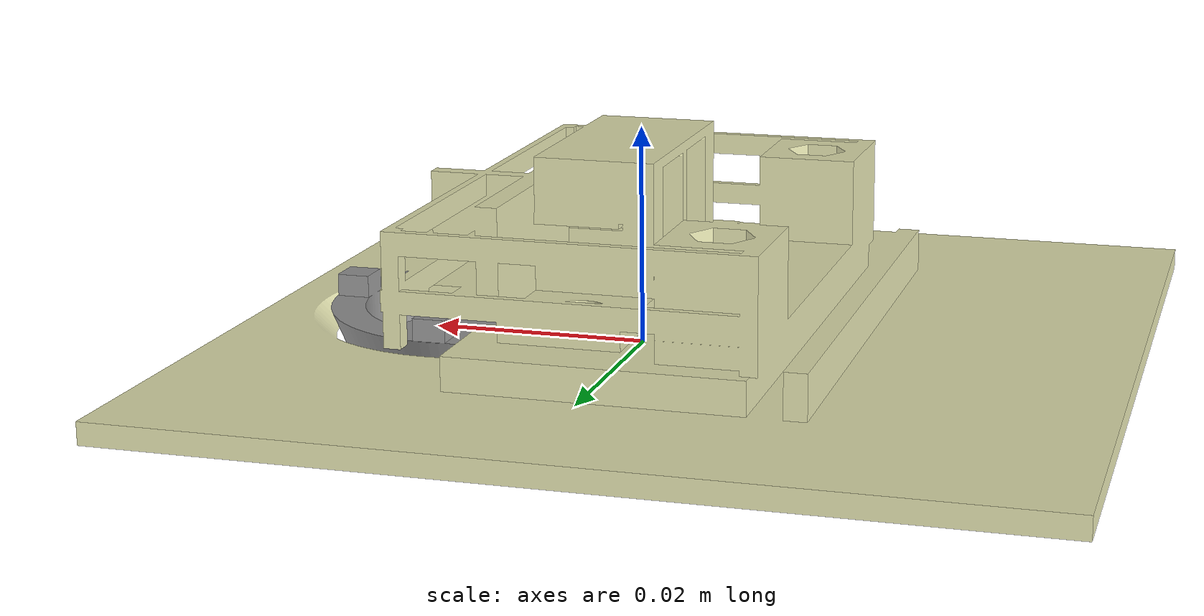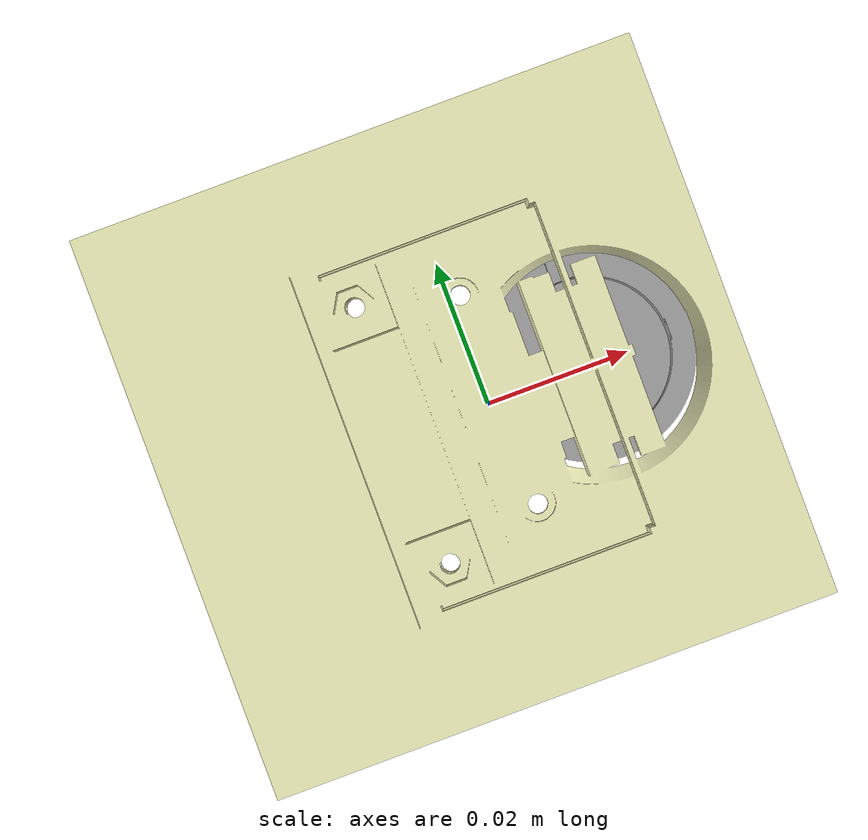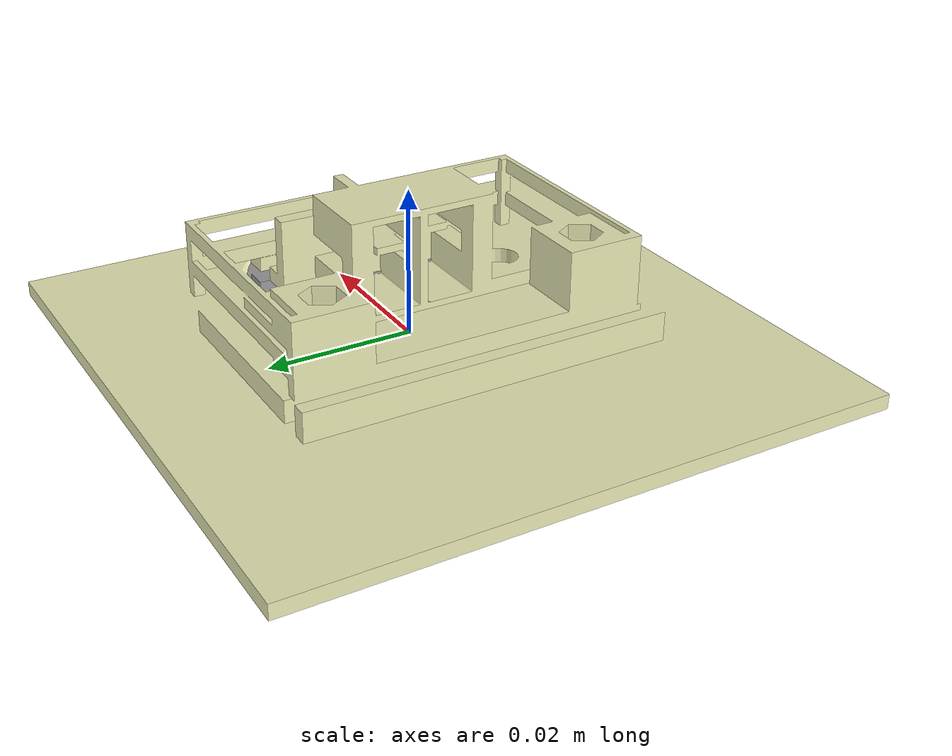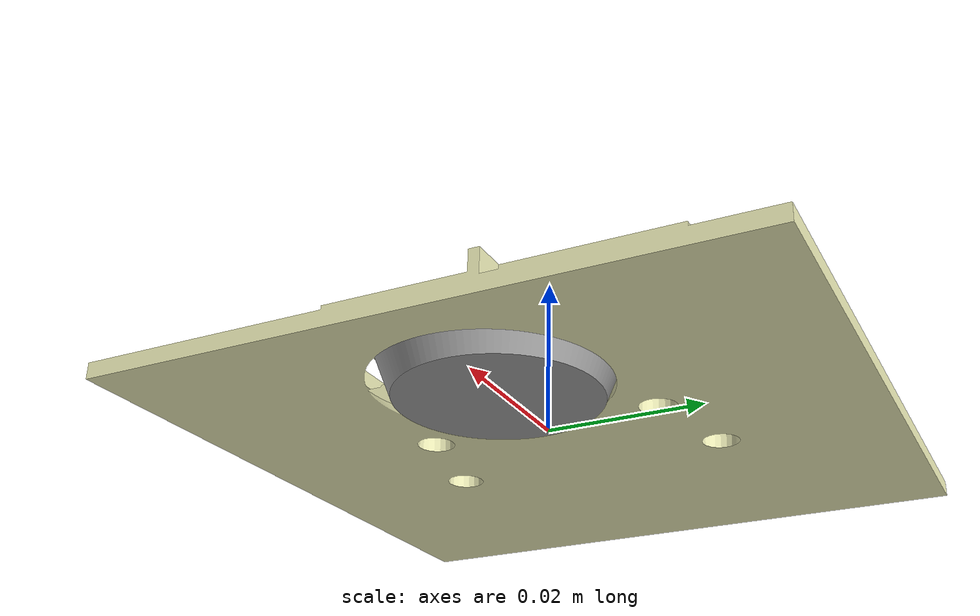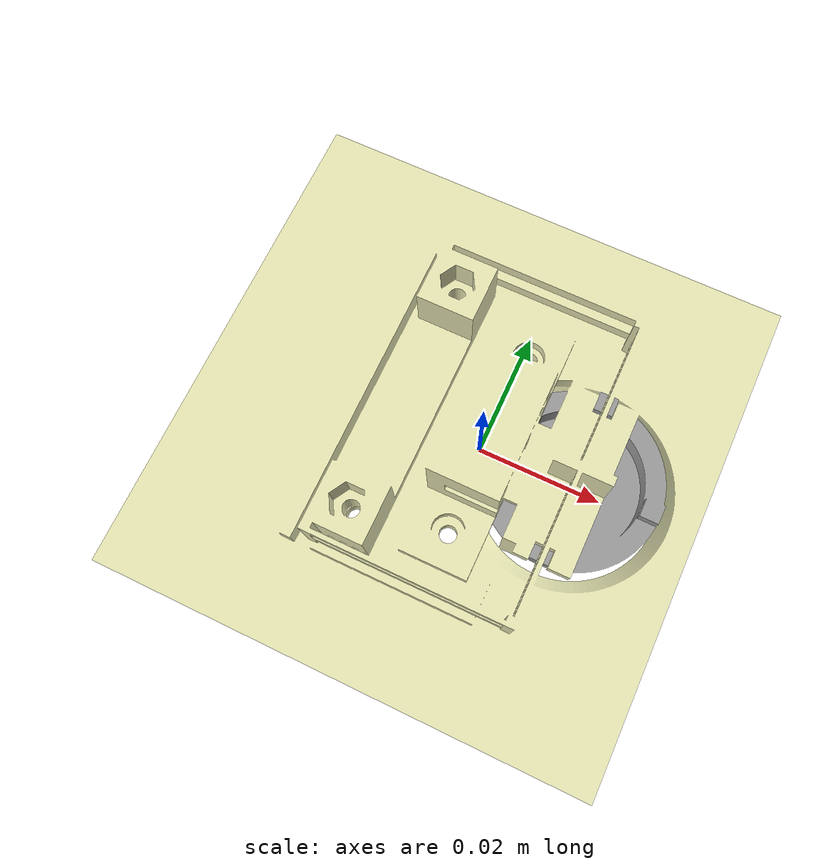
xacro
<?xml version="1.0" ?>
<robot
       xmlns:xacro="http://www.ros.org/wiki/xacro"
       name="pushing_box_ft_demo">

  <!-- basic ROS+gazebo demo of the "pushing_box-ft"
   -->

  <xacro:include filename="$(find tams_printed_ft)/urdf/ft_payload.xacro" />
  <xacro:include filename="$(find tams_printed_ft)/urdf/pushing_box_ft.xacro" />
  <xacro:include filename="$(find tams_printed_ft)/urdf/ft_sensor.xacro" />

  <link name="world" />

  <xacro:ft_control_plugin name="pushing_box_ft" />

  <xacro:ft_sensor_plugin
     name="pushing_box_ft"
     joint="sensor_joint"
     rate="200"
     topic="wrench" >
  </xacro:ft_sensor_plugin>

  <xacro:pushing_box_ft name="pushing_box_ft" />

  <joint name="world_pushing_box_ft_joint" type="fixed">
    <parent link="world" />
    <child link="pushing_box_ft" />
    <origin xyz="0 0 0" rpy="0 0 0" />
  </joint>

  <!-- this sensor is used without payload, motion is through sliding friction -->

</robot>

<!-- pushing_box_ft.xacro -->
<robot
       xmlns:xacro="http://www.ros.org/wiki/xacro"
       name="pushing_box_ft">

<xacro:macro name="pushing_box_ft" params="name" >

  <link name="${name}">
    <inertial>
      <origin xyz="0 0 ${0.005}" />
      <mass value="0.05" /> <!-- roughly 50 grams (w a bit of cable) -->
      <inertia  ixx="0.0001" ixy="0" ixz="0" iyy="0.0001" iyz="0" izz="0.00005" />
    </inertial>
    <visual>
        <origin xyz="0 0 ${0.0}" />
        <material name="dummy" >
          <color rgba="0.9 0.9 0.7 1.0" />
        </material>
        <geometry>
          <mesh filename="package://tams_printed_ft/meshes/pushing-box-complete-without-probe.dae" scale="0.001 0.001 0.001" />
        </geometry>
    </visual>
    <collision>
        <origin xyz="0 0 ${0.0}" />
        <material name="dummy" >
          <color rgba="0.9 0.9 0.7 1.0" />
        </material>
        <geometry>
          <mesh filename="package://tams_printed_ft/meshes/pushing-box-complete-without-probe.dae" scale="0.001 0.001 0.001" />
        </geometry>
    </collision>
  </link>

  <gazebo reference="${name}">
      <material>Gazebo/Green</material>
      <turnGravityOff>false</turnGravityOff>
      <selfCollide>false</selfCollide>
      <!-- kp: stiffness kd: damping mu1, mu2: friction -->
      <mu1>100.0</mu1>
      <mu2>100.0</mu2>
      <kp>1000000.0</kp>
      <kd>1.0</kd>
  </gazebo>

  <link name="${name}_probe">
    <inertial>
      <origin xyz="1 0 ${0.005/2}" />
      <mass value="0.009" />  <!-- 2 5-cent coins 3.92 grams each-->
      <inertia  ixx="0.00002" ixy="0" ixz="0" iyy="0.00002" iyz="0" izz="0.00001" />
    </inertial>
    <visual>
        <origin xyz="0 0 0.004" />
        <material name="dark_gray_coins_holder" >
          <color rgba="0.6 0.6 0.6 1.0" />
        </material>
        <geometry>
          <mesh filename="package://tams_printed_ft/meshes/pushing-box-coins-holder.dae" scale="0.001 0.001 0.001" />
        </geometry>
      </visual>
      <collision>
        <origin xyz="0 0 ${0.005/2}" />
        <geometry>
          <cylinder radius="${0.028/2}" length="0.005" />
        </geometry>
      </collision>
  </link>

  <gazebo reference="${name}_probe">
      <material>Gazebo/White</material>
      <turnGravityOff>false</turnGravityOff>
      <selfCollide>false</selfCollide>
      <!-- kp: stiffness kd: damping mu1, mu2: friction -->
      <mu1>100.0</mu1>
      <mu2>100.0</mu2>
      <kp>1000000.0</kp>
      <kd>1.0</kd>
  </gazebo>

  <!-- fucking controller requires a namespace followed by SLASH -->
  <!-- type=floating, no axis required -->
  <joint name="${name}_sensor_joint" type="prismatic">
    <parent link="${name}" />
    <child link="${name}_probe" />
    <origin xyz="0.015 0.001 ${-0.001}" rpy="0 0 0" />

    <axis xyz="1 0 0" rpy="0 0 0" />
    <dynamics damping="0.1" friction="0.05" />
    <limit lower="-0.001" upper="0.001" effort="0.1" velocity="1" />
    <safety_controller soft_lower_limit="-0.001" soft_upper_limit="0.001" k_position="1" k_velocity="1" />
  </joint>

  <transmission name="${name}_sensor_joint_transmission">
    <type>transmission_interface/SimpleTransmission</type>
    <joint name="${name}_sensor_joint">
      <hardwareInterface>hardware_interface/EffortJointInterface</hardwareInterface>
    </joint>
    <actuator name="${name}_sensor_joint_motor">
      <hardwareInterface>hardware_interface/EffortJointInterface</hardwareInterface>
      <mechanicalReduction>1</mechanicalReduction>
    </actuator>
  </transmission>

</xacro:macro>

</robot>
